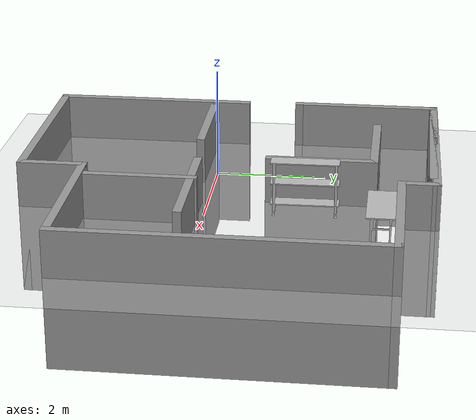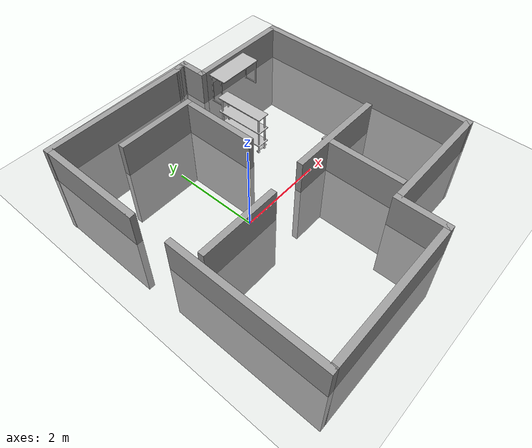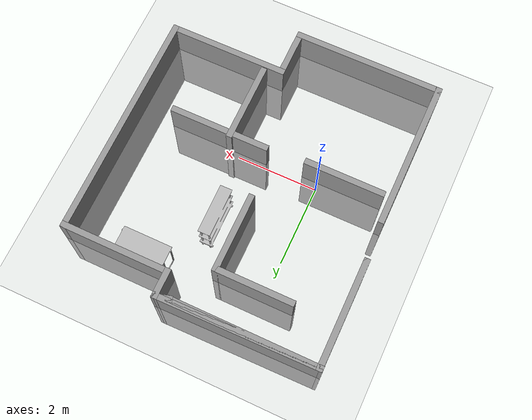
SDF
<sdf version="1.7">
 <world name="default">
  <light name="sun" type="directional">
   <pose>0 0 10 0 -0 0</pose>
   <diffuse>0.8 0.8 0.8 1</diffuse>
   <specular>0.2 0.2 0.2 1</specular>
   <attenuation>
    <range>1000</range>
    <constant>0.9</constant>
    <linear>0.01</linear>
    <quadratic>0.001</quadratic>
   </attenuation>
   <direction>-0.5 0.1 -0.9</direction>
   <spot><inner_angle>0</inner_angle><outer_angle>0</outer_angle><falloff>0</falloff></spot>
  </light>
  <model name="ground_plane">
   <static>1</static>
   <link name="link">
    <collision name="collision">
     <geometry><plane><normal>0 0 1</normal><size>100 100</size></plane></geometry>
     <surface><friction><ode><mu>100</mu><mu2>50</mu2></ode></friction></surface>
    </collision>
    <visual name="visual">
     <cast_shadows>0</cast_shadows>
     <geometry><plane><normal>0 0 1</normal><size>100 100</size></plane></geometry>
     <material>
      <script><uri>file://media/materials/scripts/gazebo.material</uri><name>Gazebo/Grey</name></script>
     </material>
    </visual>
   </link>
  </model>
  <gravity>0 0 -9.8</gravity>
  <magnetic_field>6e-06 2.3e-05 -4.2e-05</magnetic_field>
  <atmosphere type="adiabatic"/>
  <physics type="ode">
   <max_step_size>0.001</max_step_size>
   <real_time_factor>1</real_time_factor>
   <real_time_update_rate>1000</real_time_update_rate>
  </physics>
  <scene><ambient>0.4 0.4 0.4 1</ambient><background>0.7 0.7 0.7 1</background><shadows>1</shadows></scene>
  <spherical_coordinates>
   <surface_model>EARTH_WGS84</surface_model>
   <latitude_deg>0</latitude_deg>
   <longitude_deg>0</longitude_deg>
   <elevation>0</elevation>
   <heading_deg>0</heading_deg>
  </spherical_coordinates>
  <model name="tmr2025">
   <pose>1.12797 0.394637 -1.66733 0 -0 0</pose>
   <link name="Wall_0">
    <collision name="Wall_0_Collision">
     <geometry><box><size>0.3 0.15 2.5</size></box></geometry>
     <pose>0 0 1.25 0 -0 0</pose>
    </collision>
    <visual name="Wall_0_Visual">
     <pose>0 0 1.25 0 -0 0</pose>
     <geometry><box><size>0.3 0.15 2.5</size></box></geometry>
     <material>
      <script><uri>file://media/materials/scripts/gazebo.material</uri><name>Gazebo/Grey</name></script>
      <ambient>1 1 1 1</ambient>
     </material>
     <meta><layer>0</layer></meta>
    </visual>
    <pose>0.745377 3.61082 0 0 -0 -2.87979</pose>
   </link>
   <link name="Wall_1">
    <collision name="Wall_1_Collision">
     <geometry><box><size>3.75 0.15 2.5</size></box></geometry>
     <pose>0 0 1.25 0 -0 0</pose>
    </collision>
    <visual name="Wall_1_Visual">
     <pose>0 0 1.25 0 -0 0</pose>
     <geometry><box><size>3.75 0.15 2.5</size></box></geometry>
     <material>
      <script><uri>file://media/materials/scripts/gazebo.material</uri><name>Gazebo/Grey</name></script>
      <ambient>1 1 1 1</ambient>
     </material>
     <meta><layer>0</layer></meta>
    </visual>
    <pose>-1.12707 3.59141 0 0 -0 3.14159</pose>
   </link>
   <link name="Wall_10">
    <collision name="Wall_10_Collision">
     <geometry><box><size>3 0.15 2.5</size></box></geometry>
     <pose>0 0 1.25 0 -0 0</pose>
    </collision>
    <visual name="Wall_10_Visual">
     <pose>0 0 1.25 0 -0 0</pose>
     <geometry><box><size>3 0.15 2.5</size></box></geometry>
     <material>
      <script><uri>file://media/materials/scripts/gazebo.material</uri><name>Gazebo/Grey</name></script>
      <ambient>1 1 1 1</ambient>
     </material>
     <meta><layer>0</layer></meta>
    </visual>
    <pose>2.17204 -2.55055 0 0 -0 0</pose>
   </link>
   <link name="Wall_11">
    <collision name="Wall_11_Collision">
     <geometry><box><size>5.75 0.15 2.5</size></box></geometry>
     <pose>0 0 1.25 0 -0 0</pose>
    </collision>
    <visual name="Wall_11_Visual">
     <pose>0 0 1.25 0 -0 0</pose>
     <geometry><box><size>5.75 0.15 2.5</size></box></geometry>
     <material>
      <script><uri>file://media/materials/scripts/gazebo.material</uri><name>Gazebo/Grey</name></script>
      <ambient>1 1 1 1</ambient>
     </material>
     <meta><layer>0</layer></meta>
    </visual>
    <pose>3.59704 0.249448 0 0 -0 1.5708</pose>
   </link>
   <link name="Wall_12">
    <collision name="Wall_12_Collision">
     <geometry><box><size>2.75 0.15 2.5</size></box></geometry>
     <pose>0 0 1.25 0 -0 0</pose>
    </collision>
    <visual name="Wall_12_Visual">
     <pose>0 0 1.25 0 -0 0</pose>
     <geometry><box><size>2.75 0.15 2.5</size></box></geometry>
     <material>
      <script><uri>file://media/materials/scripts/gazebo.material</uri><name>Gazebo/Grey</name></script>
      <ambient>1 1 1 1</ambient>
     </material>
     <meta><layer>0</layer></meta>
    </visual>
    <pose>2.29704 3.04945 0 0 -0 3.14159</pose>
   </link>
   <link name="Wall_13">
    <collision name="Wall_13_Collision">
     <geometry><box><size>0.75 0.15 2.5</size></box></geometry>
     <pose>0 0 1.25 0 -0 0</pose>
    </collision>
    <visual name="Wall_13_Visual">
     <pose>0 0 1.25 0 -0 0</pose>
     <geometry><box><size>0.75 0.15 2.5</size></box></geometry>
     <material>
      <script><uri>file://media/materials/scripts/gazebo.material</uri><name>Gazebo/Grey</name></script>
      <ambient>1 1 1 1</ambient>
     </material>
     <meta><layer>0</layer></meta>
    </visual>
    <pose>0.997038 3.34945 0 0 -0 1.5708</pose>
   </link>
   <link name="Wall_14">
    <collision name="Wall_14_Collision">
     <geometry><box><size>4.06454 0.15 2.5</size></box></geometry>
     <pose>0 0 1.25 0 -0 0</pose>
    </collision>
    <visual name="Wall_14_Visual">
     <pose>0 0 1.25 0 -0 0</pose>
     <geometry><box><size>4.06454 0.15 2.5</size></box></geometry>
     <material>
      <script><uri>file://media/materials/scripts/gazebo.material</uri><name>Gazebo/Grey</name></script>
      <ambient>1 1 1 1</ambient>
     </material>
     <meta><layer>0</layer></meta>
    </visual>
    <pose>-0.960014 3.62043 0 0 -0 -3.12677</pose>
   </link>
   <link name="Wall_15">
    <collision name="Wall_15_Collision">
     <geometry><box><size>2.75 0.15 2.5</size></box></geometry>
     <pose>0 0 1.25 0 -0 0</pose>
    </collision>
    <visual name="Wall_15_Visual">
     <pose>0 0 1.25 0 -0 0</pose>
     <geometry><box><size>2.75 0.15 2.5</size></box></geometry>
     <material>
      <script><uri>file://media/materials/scripts/gazebo.material</uri><name>Gazebo/Grey</name></script>
      <ambient>1 1 1 1</ambient>
     </material>
     <meta><layer>0</layer></meta>
    </visual>
    <pose>-2.91707 2.29141 0 0 -0 -1.5708</pose>
   </link>
   <link name="Wall_17">
    <collision name="Wall_17_Collision">
     <geometry><box><size>2 0.15 2.5</size></box></geometry>
     <pose>0 0 1.25 0 -0 0</pose>
    </collision>
    <visual name="Wall_17_Visual">
     <pose>0 0 1.25 0 -0 0</pose>
     <geometry><box><size>2 0.15 2.5</size></box></geometry>
     <material>
      <script><uri>file://media/materials/scripts/gazebo.material</uri><name>Gazebo/Grey</name></script>
      <ambient>1 1 1 1</ambient>
     </material>
     <meta><layer>0</layer></meta>
    </visual>
    <pose>-1.69615 -0.653959 0 0 -0 3.14159</pose>
   </link>
   <link name="Wall_19">
    <collision name="Wall_19_Collision">
     <geometry><box><size>2 0.15 2.5</size></box></geometry>
     <pose>0 0 1.25 0 -0 0</pose>
    </collision>
    <visual name="Wall_19_Visual">
     <pose>0 0 1.25 0 -0 0</pose>
     <geometry><box><size>2 0.15 2.5</size></box></geometry>
     <material>
      <script><uri>file://media/materials/scripts/gazebo.material</uri><name>Gazebo/Grey</name></script>
      <ambient>1 1 1 1</ambient>
     </material>
     <meta><layer>0</layer></meta>
    </visual>
    <pose>-0.871943 2.5441 0 0 -0 0</pose>
   </link>
   <link name="Wall_2">
    <collision name="Wall_2_Collision">
     <geometry><box><size>0.16 0.15 2.5</size></box></geometry>
     <pose>0 0 1.25 0 -0 0</pose>
    </collision>
    <visual name="Wall_2_Visual">
     <pose>0 0 1.25 0 -0 0</pose>
     <geometry><box><size>0.16 0.15 2.5</size></box></geometry>
     <material>
      <script><uri>file://media/materials/scripts/gazebo.material</uri><name>Gazebo/Grey</name></script>
      <ambient>1 1 1 1</ambient>
     </material>
     <meta><layer>0</layer></meta>
    </visual>
    <pose>-2.92207 3.59141 0 0 -0 0</pose>
   </link>
   <link name="Wall_20">
    <collision name="Wall_20_Collision">
     <geometry><box><size>2 0.15 2.5</size></box></geometry>
     <pose>0 0 1.25 0 -0 0</pose>
    </collision>
    <visual name="Wall_20_Visual">
     <pose>0 0 1.25 0 -0 0</pose>
     <geometry><box><size>2 0.15 2.5</size></box></geometry>
     <material>
      <script><uri>file://media/materials/scripts/gazebo.material</uri><name>Gazebo/Grey</name></script>
      <ambient>1 1 1 1</ambient>
     </material>
     <meta><layer>0</layer></meta>
    </visual>
    <pose>0.053057 1.6191 0 0 -0 -1.5708</pose>
   </link>
   <link name="Wall_22">
    <collision name="Wall_22_Collision">
     <geometry><box><size>2.5 0.15 2.5</size></box></geometry>
     <pose>0 0 1.25 0 -0 0</pose>
    </collision>
    <visual name="Wall_22_Visual">
     <pose>0 0 1.25 0 -0 0</pose>
     <geometry><box><size>2.5 0.15 2.5</size></box></geometry>
     <material>
      <script><uri>file://media/materials/scripts/gazebo.material</uri><name>Gazebo/Grey</name></script>
      <ambient>1 1 1 1</ambient>
     </material>
     <meta><layer>0</layer></meta>
    </visual>
    <pose>1.44975 -0.573505 0 0 -0 0</pose>
   </link>
   <link name="Wall_24">
    <collision name="Wall_24_Collision">
     <geometry><box><size>2 0.15 2.5</size></box></geometry>
     <pose>0 0 1.25 0 -0 0</pose>
    </collision>
    <visual name="Wall_24_Visual">
     <pose>0 0 1.25 0 -0 0</pose>
     <geometry><box><size>2 0.15 2.5</size></box></geometry>
     <material>
      <script><uri>file://media/materials/scripts/gazebo.material</uri><name>Gazebo/Grey</name></script>
      <ambient>1 1 1 1</ambient>
     </material>
     <meta><layer>0</layer></meta>
    </visual>
    <pose>1.15975 -1.45828 0 0 -0 -1.5708</pose>
   </link>
   <link name="Wall_3">
    <collision name="Wall_3_Collision">
     <geometry><box><size>2.75 0.15 2.5</size></box></geometry>
     <pose>0 0 1.25 0 -0 0</pose>
    </collision>
    <visual name="Wall_3_Visual">
     <pose>0 0 1.25 0 -0 0</pose>
     <geometry><box><size>2.75 0.15 2.5</size></box></geometry>
     <material>
      <script><uri>file://media/materials/scripts/gazebo.material</uri><name>Gazebo/Grey</name></script>
      <ambient>1 1 1 1</ambient>
     </material>
     <meta><layer>0</layer></meta>
    </visual>
    <pose>-2.91707 2.29141 0 0 -0 -1.5708</pose>
   </link>
   <link name="Wall_4">
    <collision name="Wall_4_Collision">
     <geometry><box><size>0.15 0.15 2.5</size></box></geometry>
     <pose>0 0 1.25 0 -0 0</pose>
    </collision>
    <visual name="Wall_4_Visual">
     <pose>0 0 1.25 0 -0 0</pose>
     <geometry><box><size>0.15 0.15 2.5</size></box></geometry>
     <material>
      <script><uri>file://media/materials/scripts/gazebo.material</uri><name>Gazebo/Grey</name></script>
      <ambient>1 1 1 1</ambient>
     </material>
     <meta><layer>0</layer></meta>
    </visual>
    <pose>-2.91707 0.991409 0 0 -0 0</pose>
   </link>
   <link name="Wall_6">
    <collision name="Wall_6_Collision">
     <geometry><box><size>3.75 0.15 2.5</size></box></geometry>
     <pose>0 0 1.25 0 -0 0</pose>
    </collision>
    <visual name="Wall_6_Visual">
     <pose>0 0 1.25 0 -0 0</pose>
     <geometry><box><size>3.75 0.15 2.5</size></box></geometry>
     <material>
      <script><uri>file://media/materials/scripts/gazebo.material</uri><name>Gazebo/Grey</name></script>
      <ambient>1 1 1 1</ambient>
     </material>
     <meta><layer>0</layer></meta>
    </visual>
    <pose>-2.86296 -1.85055 0 0 -0 -1.5708</pose>
   </link>
   <link name="Wall_7">
    <collision name="Wall_7_Collision">
     <geometry><box><size>0.16 0.15 2.5</size></box></geometry>
     <pose>0 0 1.25 0 -0 0</pose>
    </collision>
    <visual name="Wall_7_Visual">
     <pose>0 0 1.25 0 -0 0</pose>
     <geometry><box><size>0.16 0.15 2.5</size></box></geometry>
     <material>
      <script><uri>file://media/materials/scripts/gazebo.material</uri><name>Gazebo/Grey</name></script>
      <ambient>1 1 1 1</ambient>
     </material>
     <meta><layer>0</layer></meta>
    </visual>
    <pose>-2.85796 -3.65055 0 0 -0 0</pose>
   </link>
   <link name="Wall_8">
    <collision name="Wall_8_Collision">
     <geometry><box><size>3.75 0.15 2.5</size></box></geometry>
     <pose>0 0 1.25 0 -0 0</pose>
    </collision>
    <visual name="Wall_8_Visual">
     <pose>0 0 1.25 0 -0 0</pose>
     <geometry><box><size>3.75 0.15 2.5</size></box></geometry>
     <material>
      <script><uri>file://media/materials/scripts/gazebo.material</uri><name>Gazebo/Grey</name></script>
      <ambient>1 1 1 1</ambient>
     </material>
     <meta><layer>0</layer></meta>
    </visual>
    <pose>-1.05296 -3.65055 0 0 -0 0</pose>
   </link>
   <link name="Wall_9">
    <collision name="Wall_9_Collision">
     <geometry><box><size>1.25 0.15 2.5</size></box></geometry>
     <pose>0 0 1.25 0 -0 0</pose>
    </collision>
    <visual name="Wall_9_Visual">
     <pose>0 0 1.25 0 -0 0</pose>
     <geometry><box><size>1.25 0.15 2.5</size></box></geometry>
     <material>
      <script><uri>file://media/materials/scripts/gazebo.material</uri><name>Gazebo/Grey</name></script>
      <ambient>1 1 1 1</ambient>
     </material>
     <meta><layer>0</layer></meta>
    </visual>
    <pose>0.747038 -3.10055 0 0 -0 1.5708</pose>
   </link>
   <static>1</static>
  </model>
  <model name="shelf">
   <link name="link_0">
    <inertial>
     <mass>35</mass>
     <inertia>
      <ixx>0.166667</ixx>
      <ixy>0</ixy>
      <ixz>0</ixz>
      <iyy>0.166667</iyy>
      <iyz>0</iyz>
      <izz>0.166667</izz>
     </inertia>
    </inertial>
    <visual name="visual">
     <geometry>
      <mesh><uri>model://BioRoboticsLab/meshes/TMR_2025_shelf.dae</uri><scale>1 1 1</scale></mesh>
     </geometry>
     <material><lighting>1</lighting><shader type="pixel"/></material>
    </visual>
    <collision name="collision">
     <geometry>
      <mesh><uri>model://BioRoboticsLab/meshes/TMR_2025_shelf.dae</uri><scale>1 1 1</scale></mesh>
     </geometry>
     <surface>
      <friction>
       <ode><mu>1</mu><mu2>1</mu2><fdir1>0 0 0</fdir1><slip1>0</slip1><slip2>0</slip2></ode>
       <torsional>
        <coefficient>1</coefficient>
        <patch_radius>0</patch_radius>
        <surface_radius>0</surface_radius>
        <use_patch_radius>1</use_patch_radius>
        <ode><slip>0</slip></ode>
       </torsional>
      </friction>
      <bounce><restitution_coefficient>0</restitution_coefficient><threshold>1e+06</threshold></bounce>
      <contact>
       <collide_without_contact>0</collide_without_contact>
       <collide_without_contact_bitmask>1</collide_without_contact_bitmask>
       <collide_bitmask>1</collide_bitmask>
       <ode>
        <soft_cfm>0</soft_cfm>
        <soft_erp>0.2</soft_erp>
        <kp>1e+13</kp>
        <kd>1</kd>
        <max_vel>0.01</max_vel>
        <min_depth>0</min_depth>
       </ode>
       <bullet>
        <split_impulse>1</split_impulse>
        <split_impulse_penetration_threshold>-0.01</split_impulse_penetration_threshold>
        <soft_cfm>0</soft_cfm>
        <soft_erp>0.2</soft_erp>
        <kp>1e+13</kp>
        <kd>1</kd>
       </bullet>
      </contact>
     </surface>
    </collision>
   </link>
   <static>1</static>
   <pose>1.74733 1.76324 0 0 0 -1.55853</pose>
  </model>
  <model name="table">
   <link name="link_0">
    <inertial>
     <mass>35</mass>
     <inertia>
      <ixx>0.166667</ixx>
      <ixy>0</ixy>
      <ixz>0</ixz>
      <iyy>0.166667</iyy>
      <iyz>0</iyz>
      <izz>0.166667</izz>
     </inertia>
    </inertial>
    <visual name="visual">
     <geometry>
      <mesh><uri>model://BioRoboticsLab/meshes/TMR_2025_table.dae</uri><scale>1 1 1</scale></mesh>
     </geometry>
     <material><lighting>1</lighting><shader type="pixel"/></material>
    </visual>
    <collision name="collision">
     <geometry>
      <mesh><uri>model://BioRoboticsLab/meshes/TMR_2025_table.dae</uri><scale>1 1 1</scale></mesh>
     </geometry>
     <surface>
      <friction>
       <ode><mu>1</mu><mu2>1</mu2><fdir1>0 0 0</fdir1><slip1>0</slip1><slip2>0</slip2></ode>
       <torsional>
        <coefficient>1</coefficient>
        <patch_radius>0</patch_radius>
        <surface_radius>0</surface_radius>
        <use_patch_radius>1</use_patch_radius>
        <ode><slip>0</slip></ode>
       </torsional>
      </friction>
      <bounce><restitution_coefficient>0</restitution_coefficient><threshold>1e+06</threshold></bounce>
      <contact>
       <collide_without_contact>0</collide_without_contact>
       <collide_without_contact_bitmask>1</collide_without_contact_bitmask>
       <collide_bitmask>1</collide_bitmask>
       <ode>
        <soft_cfm>0</soft_cfm>
        <soft_erp>0.2</soft_erp>
        <kp>1e+13</kp>
        <kd>1</kd>
        <max_vel>0.01</max_vel>
        <min_depth>0</min_depth>
       </ode>
       <bullet>
        <split_impulse>1</split_impulse>
        <split_impulse_penetration_threshold>-0.01</split_impulse_penetration_threshold>
        <soft_cfm>0</soft_cfm>
        <soft_erp>0.2</soft_erp>
        <kp>1e+13</kp>
        <kd>1</kd>
       </bullet>
      </contact>
     </surface>
    </collision>
   </link>
   <static>1</static>
   <pose>2.89301 3.12837 0 0 -0 0</pose>
  </model>
 </world>
</sdf>
